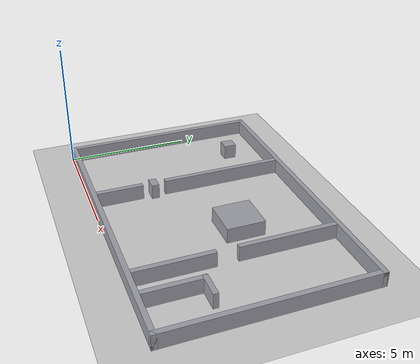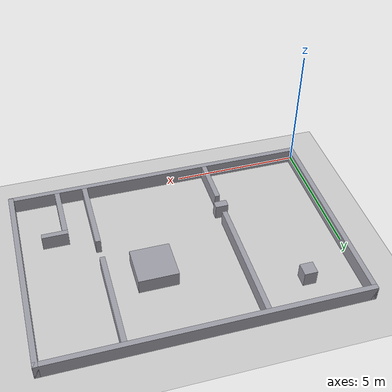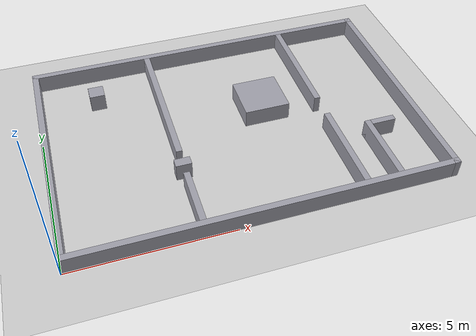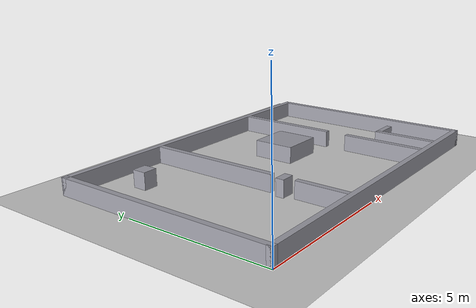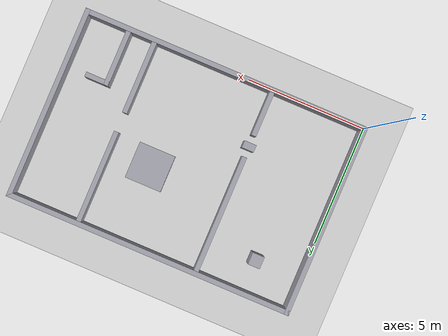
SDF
<?xml version="1.0"?>
<sdf version="1.10">
  <world name="pista_obstaculos">

    <physics name="passo_fino" type="ode">
      <max_step_size>0.001</max_step_size>
      <real_time_factor>1.0</real_time_factor>
    </physics>

    <plugin filename="gz-sim-physics-system" name="gz::sim::systems::Physics"/>
    <plugin filename="gz-sim-user-commands-system" name="gz::sim::systems::UserCommands"/>
    <plugin filename="gz-sim-scene-broadcaster-system" name="gz::sim::systems::SceneBroadcaster"/>
    <plugin filename="gz-sim-contact-system" name="gz::sim::systems::Contact"/>
    <plugin filename="gz-sim-imu-system" name="gz::sim::systems::Imu"/>
    <plugin filename="gz-sim-sensors-system" name="gz::sim::systems::Sensors">
      <render_engine>ogre2</render_engine>
    </plugin>

    <gravity>0 0 -9.8</gravity>

    <light type="directional" name="sol">
      <cast_shadows>true</cast_shadows>
      <pose>0 0 10 0 0 0</pose>
      <diffuse>0.9 0.9 0.9 1</diffuse>
      <specular>0.2 0.2 0.2 1</specular>
      <direction>-0.5 0.3 -0.9</direction>
    </light>

    <model name="chao">
      <static>true</static>
      <link name="link">
        <collision name="collision">
          <geometry><plane><normal>0 0 1</normal><size>60 60</size></plane></geometry>
          <surface>
            <friction>
              <ode><mu>1.0</mu><mu2>1.0</mu2></ode>
            </friction>
          </surface>
        </collision>
        <visual name="visual">
          <geometry><plane><normal>0 0 1</normal><size>60 60</size></plane></geometry>
          <material>
            <ambient>0.75 0.75 0.75 1</ambient>
            <diffuse>0.8 0.8 0.8 1</diffuse>
          </material>
        </visual>
      </link>
    </model>

    <model name="borda_sul">
      <static>true</static>
      <pose>6.000 0.100 0.300 0 0 0</pose>
      <link name="link">
        <collision name="collision">
          <geometry><box><size>12.000 0.200 0.600</size></box></geometry>
        </collision>
        <visual name="visual">
          <geometry><box><size>12.000 0.200 0.600</size></box></geometry>
          <material>
            <ambient>0.55 0.55 0.58 1</ambient>
            <diffuse>0.62 0.62 0.66 1</diffuse>
          </material>
        </visual>
      </link>
    </model>

    <model name="borda_norte">
      <static>true</static>
      <pose>6.000 7.900 0.300 0 0 0</pose>
      <link name="link">
        <collision name="collision">
          <geometry><box><size>12.000 0.200 0.600</size></box></geometry>
        </collision>
        <visual name="visual">
          <geometry><box><size>12.000 0.200 0.600</size></box></geometry>
          <material>
            <ambient>0.55 0.55 0.58 1</ambient>
            <diffuse>0.62 0.62 0.66 1</diffuse>
          </material>
        </visual>
      </link>
    </model>

    <model name="borda_oeste">
      <static>true</static>
      <pose>0.100 4.000 0.300 0 0 0</pose>
      <link name="link">
        <collision name="collision">
          <geometry><box><size>0.200 8.000 0.600</size></box></geometry>
        </collision>
        <visual name="visual">
          <geometry><box><size>0.200 8.000 0.600</size></box></geometry>
          <material>
            <ambient>0.55 0.55 0.58 1</ambient>
            <diffuse>0.62 0.62 0.66 1</diffuse>
          </material>
        </visual>
      </link>
    </model>

    <model name="borda_leste">
      <static>true</static>
      <pose>11.900 4.000 0.300 0 0 0</pose>
      <link name="link">
        <collision name="collision">
          <geometry><box><size>0.200 8.000 0.600</size></box></geometry>
        </collision>
        <visual name="visual">
          <geometry><box><size>0.200 8.000 0.600</size></box></geometry>
          <material>
            <ambient>0.55 0.55 0.58 1</ambient>
            <diffuse>0.62 0.62 0.66 1</diffuse>
          </material>
        </visual>
      </link>
    </model>

    <model name="divisoria_sul">
      <static>true</static>
      <pose>4.000 1.125 0.300 0 0 0</pose>
      <link name="link">
        <collision name="collision">
          <geometry><box><size>0.200 1.850 0.600</size></box></geometry>
        </collision>
        <visual name="visual">
          <geometry><box><size>0.200 1.850 0.600</size></box></geometry>
          <material>
            <ambient>0.55 0.55 0.58 1</ambient>
            <diffuse>0.62 0.62 0.66 1</diffuse>
          </material>
        </visual>
      </link>
    </model>

    <model name="divisoria_norte">
      <static>true</static>
      <pose>4.000 5.375 0.300 0 0 0</pose>
      <link name="link">
        <collision name="collision">
          <geometry><box><size>0.200 4.850 0.600</size></box></geometry>
        </collision>
        <visual name="visual">
          <geometry><box><size>0.200 4.850 0.600</size></box></geometry>
          <material>
            <ambient>0.55 0.55 0.58 1</ambient>
            <diffuse>0.62 0.62 0.66 1</diffuse>
          </material>
        </visual>
      </link>
    </model>

    <model name="bloco">
      <static>true</static>
      <pose>7.250 4.750 0.300 0 0 0</pose>
      <link name="link">
        <collision name="collision">
          <geometry><box><size>1.500 1.500 0.600</size></box></geometry>
        </collision>
        <visual name="visual">
          <geometry><box><size>1.500 1.500 0.600</size></box></geometry>
          <material>
            <ambient>0.55 0.55 0.58 1</ambient>
            <diffuse>0.62 0.62 0.66 1</diffuse>
          </material>
        </visual>
      </link>
    </model>

    <model name="aperto_sul">
      <static>true</static>
      <pose>9.000 1.700 0.300 0 0 0</pose>
      <link name="link">
        <collision name="collision">
          <geometry><box><size>0.200 3.000 0.600</size></box></geometry>
        </collision>
        <visual name="visual">
          <geometry><box><size>0.200 3.000 0.600</size></box></geometry>
          <material>
            <ambient>0.55 0.55 0.58 1</ambient>
            <diffuse>0.62 0.62 0.66 1</diffuse>
          </material>
        </visual>
      </link>
    </model>

    <model name="aperto_norte">
      <static>true</static>
      <pose>9.000 5.900 0.300 0 0 0</pose>
      <link name="link">
        <collision name="collision">
          <geometry><box><size>0.200 3.800 0.600</size></box></geometry>
        </collision>
        <visual name="visual">
          <geometry><box><size>0.200 3.800 0.600</size></box></geometry>
          <material>
            <ambient>0.55 0.55 0.58 1</ambient>
            <diffuse>0.62 0.62 0.66 1</diffuse>
          </material>
        </visual>
      </link>
    </model>

    <model name="beco_lateral">
      <static>true</static>
      <pose>10.100 1.350 0.300 0 0 0</pose>
      <link name="link">
        <collision name="collision">
          <geometry><box><size>0.200 2.300 0.600</size></box></geometry>
        </collision>
        <visual name="visual">
          <geometry><box><size>0.200 2.300 0.600</size></box></geometry>
          <material>
            <ambient>0.55 0.55 0.58 1</ambient>
            <diffuse>0.62 0.62 0.66 1</diffuse>
          </material>
        </visual>
      </link>
    </model>

    <model name="beco_fundo">
      <static>true</static>
      <pose>10.500 2.400 0.300 0 0 0</pose>
      <link name="link">
        <collision name="collision">
          <geometry><box><size>1.000 0.200 0.600</size></box></geometry>
        </collision>
        <visual name="visual">
          <geometry><box><size>1.000 0.200 0.600</size></box></geometry>
          <material>
            <ambient>0.55 0.55 0.58 1</ambient>
            <diffuse>0.62 0.62 0.66 1</diffuse>
          </material>
        </visual>
      </link>
    </model>

    <model name="surpresa_norte">
      <static>true</static>
      <pose>2.000 6.500 0.300 0 0 0</pose>
      <link name="link">
        <collision name="collision">
          <geometry><box><size>0.500 0.500 0.600</size></box></geometry>
        </collision>
        <visual name="visual">
          <geometry><box><size>0.500 0.500 0.600</size></box></geometry>
          <material>
            <ambient>0.55 0.55 0.58 1</ambient>
            <diffuse>0.62 0.62 0.66 1</diffuse>
          </material>
        </visual>
      </link>
    </model>

    <model name="surpresa_porta">
      <static>true</static>
      <pose>4.000 2.500 0.300 0 0 0</pose>
      <link name="link">
        <collision name="collision">
          <geometry><box><size>0.500 0.300 0.600</size></box></geometry>
        </collision>
        <visual name="visual">
          <geometry><box><size>0.500 0.300 0.600</size></box></geometry>
          <material>
            <ambient>0.55 0.55 0.58 1</ambient>
            <diffuse>0.62 0.62 0.66 1</diffuse>
          </material>
        </visual>
      </link>
    </model>

  </world>
</sdf>
